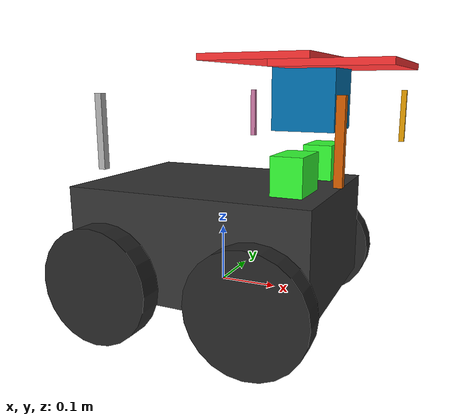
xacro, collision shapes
<?xml version="1.0"?>
<robot name="jackal" xmlns:xacro="http://www.ros.org/wiki/xacro">
  <xacro:property name="PI" value="3.1415926535897931" />

  <xacro:property name="wheelbase" value="0.262" />
  <xacro:property name="track" value="0.37559" />
  <xacro:property name="wheel_vertical_offset" value="0.0345" />
  <xacro:property name="footprint_vertical_offset" value="-0.0655" />

  <xacro:property name="wheel_radius" value="0.098" />
  <xacro:property name="wheel_width" value="0.040" />

  <xacro:property name="chassis_length" value="0.420" />
  <xacro:property name="chassis_width" value="0.310" />
  <xacro:property name="chassis_height" value="0.184" />

  <xacro:property name="dummy_inertia" value="1e-09"/>

  <xacro:property name="mount_spacing" value="0.120" />

  <material name="dark_grey"><color rgba="0.2 0.2 0.2 1.0" /></material>
  <material name="light_grey"><color rgba="0.4 0.4 0.4 1.0" /></material>
  <material name="yellow"><color rgba="0.8 0.8 0.0 1.0" /></material>
  <material name="black"><color rgba="0.15 0.15 0.15 1.0" /></material>

  <xacro:macro name="wheel" params="prefix *joint_pose">

    <link name="${prefix}_wheel_link">
      <visual>
        <origin xyz="0 0 0" rpy="${PI/2} 0 0"/>
        <geometry>
          <mesh filename="package://jackal_description/meshes/jackal-wheel.stl"/>
        </geometry>
        <material name="black" />
      </visual>
      <collision>
        <origin xyz="0 0 0" rpy="${PI/2} 0 0"/>
        <geometry>
          <cylinder radius="${wheel_radius}" length="${wheel_width}"/>
        </geometry>
      </collision>
      <inertial>
        <origin xyz="0 0 0" rpy="0 0 0"/>
        <mass value="0.477"/>
        <inertia
          ixx="0.0013" ixy="0" ixz="0"
          iyy="0.0024" iyz="0"
          izz="0.0013"/>
      </inertial>
    </link>

    <gazebo reference="${prefix}_wheel_link">
      <material>Gazebo/DarkGrey</material>
    </gazebo>

    <joint name="${prefix}_wheel" type="continuous">
      <parent link="chassis_link"/>
      <child link="${prefix}_wheel_link" />
      <xacro:insert_block name="joint_pose" />
      <axis xyz="0 1 0" />
    </joint>

    <!-- In reality, Jackal has only two motors, one per side. However, it's more
         straightforward for Gazebo to simulate as if there's an actuator per wheel. -->
    <transmission name="${prefix}_wheel_trans">
      <type>transmission_interface/SimpleTransmission</type>
      <joint name="${prefix}_wheel">
        <hardwareInterface>VelocityJointInterface</hardwareInterface>
      </joint>
      <actuator name="${prefix}_actuator">
        <mechanicalReduction>1</mechanicalReduction>
      </actuator>
    </transmission>
  </xacro:macro>

  <xacro:wheel prefix="front_left">
    <origin xyz="${wheelbase/2} ${track/2} ${wheel_vertical_offset}" rpy="0 0 0" />
  </xacro:wheel>
  <xacro:wheel prefix="front_right">
    <origin xyz="${wheelbase/2} ${-track/2} ${wheel_vertical_offset}" rpy="0 0 0" />
  </xacro:wheel>
  <xacro:wheel prefix="rear_left">
    <origin xyz="${-wheelbase/2} ${track/2} ${wheel_vertical_offset}" rpy="0 0 0" />
  </xacro:wheel>
  <xacro:wheel prefix="rear_right">
    <origin xyz="${-wheelbase/2} ${-track/2} ${wheel_vertical_offset}" rpy="0 0 0" />
  </xacro:wheel>

  <link name="base_link"></link>

  <joint name="base_link_joint" type="fixed">
    <origin xyz="0 0 0" rpy="0 0 0" />
    <parent link="base_link"/>
    <child link="chassis_link" />
  </joint>

  <link name="chassis_link">
    <visual>
      <origin xyz="0 0 ${footprint_vertical_offset}" rpy="${PI/2} 0 ${PI/2}"/>
      <geometry>
        <mesh filename="package://jackal_description/meshes/jackal-base.stl"/>
      </geometry>
      <material name="dark_grey" />
    </visual>
    <collision>
      <origin xyz="0 0 ${chassis_height/2}"/>
      <geometry>
        <box size="${chassis_length} ${chassis_width} ${chassis_height}"/>
      </geometry>
    </collision>
    <inertial>
      <!-- Center of mass -->
      <origin xyz="0.012  0.002 0.067" rpy="0 0 0"/>
      <mass value="16.523"/>
      <!-- Moments of inertia: ( chassis without wheels ) -->
      <inertia
        ixx="0.3136" ixy="-0.0008" ixz="0.0164"
        iyy="0.3922" iyz="-0.0009"
        izz="0.4485"/>
      </inertial>
  </link>

  <link name="fenders_link">
    <visual>
      <origin xyz="0 0 ${footprint_vertical_offset}" rpy="${PI/2} 0 ${PI/2}"/>
      <geometry>
        <mesh filename="package://jackal_description/meshes/jackal-fenders.stl"/>
      </geometry>
      <material name="yellow" />
    </visual>
  </link>
  <joint name="fenders_joint" type="fixed">
    <parent link="chassis_link" />
    <child link="fenders_link" />
  </joint>

  <link name="imu_link">
    <inertial>
      <mass value="0.001"/>
      <origin xyz="0 0 0" rpy="0 0 0"/>
      <inertia ixx="${dummy_inertia}" ixy="0.0" ixz="0.0" iyy="${dummy_inertia}" iyz="0.0" izz="${dummy_inertia}"/>
    </inertial>
  </link>
  <joint name="imu_joint" type="fixed">
    <parent link="chassis_link" />
    <child link="imu_link" />
  </joint>

  <!-- TODO: Same note as applies to imu_link -->
  <link name="navsat_link">
    <visual>
      <geometry>
        <cylinder radius="0.026" length="0.016" />
      </geometry>
      <origin xyz="0 0 0.008" />
      <material name="black" />
    </visual>
  </link>
  <joint name="navsat_joint" type="fixed">
    <parent link="chassis_link" />
    <child link="navsat_link" />
    <origin xyz="-0.180 0.126 0.1815" />
  </joint>

  <link name="mid_mount"></link>
  <joint name="mid_mount_joint" type="fixed">
    <parent link="chassis_link" />
    <child link="mid_mount" />
    <origin xyz="0 0 ${chassis_height}" />
  </joint>

  <link name="rear_mount"></link>
  <joint name="rear_mount_joint" type="fixed">
    <parent link="mid_mount" />
    <child link="rear_mount" />
    <origin xyz="${-mount_spacing} 0 0" />
  </joint>

  <link name="front_mount"></link>
  <joint name="front_mount_joint" type="fixed">
    <parent link="mid_mount" />
    <child link="front_mount" />
    <origin xyz="${mount_spacing} 0 0" />
  </joint>

  <!-- Bring in simulation data for Gazebo. -->
  <xacro:include filename="jackal.gazebo" />

  <xacro:include filename="sensors.urdf" />

  <!-- Optional standard accessories, including their simulation data. The rendering
       of these into the final description is controlled by optenv variables, which
       default each one to off.-->
  <!--xacro:include filename="accessories.urdf.xacro" /-->

  <!-- Optional custom includes. -->
  <!--xacro:include filename="$(optenv JACKAL_URDF_EXTRAS empty.urdf)" /-->
</robot>

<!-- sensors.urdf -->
<robot>

<!-- ================PS3 BASE PLACEMENT================== -->
  <link name="bottom_plate_link">
    <collision>
      <origin xyz="0.11 0.0 0.19" rpy="0 0 0" />
      <geometry>
        <box size="0.17 0.27 0.01"/>
      </geometry>
    </collision>

    <visual>
      <geometry>
        <box size="0.17 0.27 0.01"/>
      </geometry>
      <material name="pink">
        <color rgba="1 0.2 0.2 1"/>
      </material>
    </visual>

    <inertial>
      <mass value="0.2" />
      <origin xyz="0.11 0.0 0.19" rpy="0 0 0" />
      <box_inertia m="0.1" x="0.1" y="0.1" z="0.1" />
      <inertia ixx="1e-6" ixy="0" ixz="0" iyy="1e-6" iyz="0" izz="1e-6" />
    </inertial>
  </link>

  <joint name="bottom_plate_joint" type="fixed">
    <parent link="fenders_link"/>
    <child link="bottom_plate_link"/>
    <origin xyz="0.11 0.0 0.19" rpy="0 0 0" />
  </joint>
  <link name="rod_1_link">
    <collision>
      <origin xyz="0.08 -0.13 0.05" rpy="0 0 0" />
      <geometry>
        <box size="0.01 0.01 0.1"/>
      </geometry>
    </collision>
    <visual>
      <geometry>
        <box size="0.01 0.01 0.1"/>
      </geometry>
    </visual>
    <inertial>
      <mass value="0.2" />
      <origin xyz="0.08 -0.13 0.05" rpy="0 0 0" />
      <box_inertia m="0.1" x="0.1" y="0.1" z="0.1" />
      <inertia ixx="1e-6" ixy="0" ixz="0" iyy="1e-6" iyz="0" izz="1e-6" />
    </inertial>
  </link>
  <joint name="rod_1_joint" type="fixed">
    <parent link="bottom_plate_link"/>
    <child link="rod_1_link"/>
    <origin xyz="0.08 -0.13 0.05" rpy="0 0 0" />
  </joint>

  <link name="rod_2_link">
    <collision>
      <origin xyz="-0.08 0.13 0.05" rpy="0 0 0" />
      <geometry>
        <box size="0.01 0.01 0.1"/>
      </geometry>
    </collision>
    <visual>
      <geometry>
        <box size="0.01 0.01 0.1"/>
      </geometry>
    </visual>
    <inertial>
      <mass value="0.2" />
      <origin xyz="-0.08 0.13 0.05" rpy="0 0 0" />
      <box_inertia m="0.1" x="0.1" y="0.1" z="0.1" />
      <inertia ixx="1e-6" ixy="0" ixz="0" iyy="1e-6" iyz="0" izz="1e-6" />
    </inertial>
  </link>
  <joint name="rod_2_joint" type="fixed">
    <parent link="bottom_plate_link"/>
    <child link="rod_2_link"/>
    <origin xyz="-0.08 0.13 0.05" rpy="0 0 0" />
  </joint>

  <link name="rod_3_link">
    <collision>
      <origin xyz="-0.08 -0.13 0.05" rpy="0 0 0" />
      <geometry>
        <box size="0.01 0.01 0.1"/>
      </geometry>
    </collision>
    <visual>
      <geometry>
        <box size="0.01 0.01 0.1"/>
      </geometry>
    </visual>
    <inertial>
      <mass value="0.2" />
      <origin xyz="-0.08 -0.13 0.05" rpy="0 0 0" />
      <box_inertia m="0.1" x="0.1" y="0.1" z="0.1" />
      <inertia ixx="1e-6" ixy="0" ixz="0" iyy="1e-6" iyz="0" izz="1e-6" />
    </inertial>
  </link>
  <joint name="rod_3_joint" type="fixed">
    <parent link="bottom_plate_link"/>
    <child link="rod_3_link"/>
    <origin xyz="-0.08 -0.13 0.05" rpy="0 0 0" />
  </joint>

  <link name="rod_4_link">
    <collision>
      <origin xyz="0.08 0.13 0.05" rpy="0 0 0" />
      <geometry>
        <box size="0.01 0.01 0.1"/>
      </geometry>
    </collision>
    <visual>
      <geometry>
        <box size="0.01 0.01 0.1"/>
      </geometry>
    </visual>
    <inertial>
      <mass value="0.2" />
      <origin xyz="0.08 0.13 0.05" rpy="0 0 0" />
      <box_inertia m="0.1" x="0.1" y="0.1" z="0.1" />
      <inertia ixx="1e-6" ixy="0" ixz="0" iyy="1e-6" iyz="0" izz="1e-6" />
    </inertial>
  </link>
  <joint name="rod_4_joint" type="fixed">
    <parent link="bottom_plate_link"/>
    <child link="rod_4_link"/>
    <origin xyz="0.08 0.13 0.05" rpy="0 0 0" />
  </joint>

  <link name="top_plate_link">
    <collision>
      <origin xyz="0.0 0.0 0.1" rpy="0 0 0" />
      <geometry>
        <box size="0.17 0.27 0.01"/>
      </geometry>
    </collision>
    <visual>
      <geometry>
        <box size="0.17 0.27 0.01"/>
      </geometry>
      <material name="pink">
        <color rgba="1 0.2 0.2 1"/>
      </material>
    </visual>
    <inertial>
      <mass value="0.2" />
      <origin xyz="0.0 0.0 0.1" rpy="0 0 0" />
      <box_inertia m="0.1" x="0.1" y="0.1" z="0.1" />
      <inertia ixx="1e-6" ixy="0" ixz="0" iyy="1e-6" iyz="0" izz="1e-6" />
    </inertial>
  </link>
  <joint name="top_plate_joint" type="fixed">
    <parent link="bottom_plate_link"/>
    <child link="top_plate_link"/>
    <origin xyz="0.0 0.0 0.1" rpy="0 0 0" />
  </joint>

<!-- ============== PS3 CAMERAS PLACEMENT =============== -->
  <link name="ps3_camera_r_link">
    <collision>
      <origin xyz="0 0 0" rpy="0 0 0"/>
      <geometry>
        <box size="0.05 0.08 0.06"/>
      </geometry>
    </collision>

    <visual>
      <origin xyz="0 0 0" rpy="0 0 0"/>
      <geometry>
        <box size="0.05 0.08 0.06"/>
      </geometry>
      <material name="green">
        <color rgba="0.2 1 0.2 1"/>
      </material>
    </visual>

    <inertial>
      <mass value="0.1" />
      <origin xyz="0 0 0" rpy="0 0 0"/>
      <box_inertia m="0.1" x="0.1" y="0.1" z="0.1" />
      <inertia ixx="1e-6" ixy="0" ixz="0" iyy="1e-6" iyz="0" izz="1e-6" />
    </inertial>
  </link>

  <joint name="ps3_camera_r_joint" type="fixed">
    <axis xyz="0 1 0" />
    <origin xyz="0.05 -0.08 0.03" rpy="0 0 0"/>
    <parent link="bottom_plate_link"/>
    <child link="ps3_camera_r_link"/>
  </joint>

  <link name="ps3_camera_l_link">
    <collision>
      <origin xyz="0 0 0" rpy="0 0 0"/>
      <geometry>
        <box size="0.05 0.08 0.06"/>
      </geometry>
    </collision>

    <visual>
      <origin xyz="0 0 0" rpy="0 0 0"/>
      <geometry>
        <box size="0.05 0.08 0.06"/>
      </geometry>
      <material name="green">
        <color rgba="0.2 1 0.2 1"/>
      </material>
    </visual>

    <inertial>
      <mass value="0.1" />
      <origin xyz="0 0 0" rpy="0 0 0"/>
      <box_inertia m="0.1" x="0.1" y="0.1" z="0.1" />
      <inertia ixx="1e-6" ixy="0" ixz="0" iyy="1e-6" iyz="0" izz="1e-6" />
    </inertial>
  </link>

  <joint name="ps3_camera_l_joint" type="fixed">
    <axis xyz="0 1 0" />
    <origin xyz="0.05 0.08 0.03" rpy="0 0 0"/>
    <parent link="bottom_plate_link"/>
    <child link="ps3_camera_l_link"/>
  </joint>

  <!-- GAZEBO -->
  <gazebo reference="ps3_camera_l_link">
    <material>Gazebo/Green</material>
    <sensor type="camera" name="camera_l">
      <update_rate>60.0</update_rate>
      <camera name="head">
        <horizontal_fov>1.1</horizontal_fov>
        <image>
          <width>640</width>
          <height>480</height>
          <format>R8G8B8</format>
        </image>
        <clip>
          <near>0.02</near>
          <far>300</far>
        </clip>
      </camera>
      <plugin name="camera_controller" filename="libgazebo_ros_camera.so">
        <alwaysOn>true</alwaysOn>
        <updateRate>0.0</updateRate>
        <cameraName>mybot/camera_l</cameraName>
        <imageTopicName>image_raw</imageTopicName>
        <cameraInfoTopicName>camera_info</cameraInfoTopicName>
        <frameName>camera</frameName>
        <hackBaseline>0.07</hackBaseline>
        <distortionK1>0.0</distortionK1>
        <distortionK2>0.0</distortionK2>
        <distortionK3>0.0</distortionK3>
        <distortionT1>0.0</distortionT1>
        <distortionT2>0.0</distortionT2>
      </plugin>
    </sensor>
  </gazebo>

  <gazebo reference="ps3_camera_r_link">
    <material>Gazebo/Green</material>
    <sensor type="camera" name="camera_r">
      <update_rate>60.0</update_rate>
      <camera name="head">
        <horizontal_fov>1.1</horizontal_fov>
        <image>
          <width>640</width>
          <height>480</height>
          <format>R8G8B8</format>
        </image>
        <clip>
          <near>0.02</near>
          <far>300</far>
        </clip>
      </camera>
      <plugin name="camera_controller" filename="libgazebo_ros_camera.so">
        <alwaysOn>true</alwaysOn>
        <updateRate>0.0</updateRate>
        <cameraName>mybot/camera_r</cameraName>
        <imageTopicName>image_raw</imageTopicName>
        <cameraInfoTopicName>camera_info</cameraInfoTopicName>
        <frameName>camera</frameName>
        <hackBaseline>0.07</hackBaseline>
        <distortionK1>0.0</distortionK1>
        <distortionK2>0.0</distortionK2>
        <distortionK3>0.0</distortionK3>
        <distortionT1>0.0</distortionT1>
        <distortionT2>0.0</distortionT2>
      </plugin>
    </sensor>
  </gazebo>

<!-- ============= HOKUYO LASER PLACEMENT =============== -->

  <link name="hokuyo_link">
    <collision>
      <origin xyz="0 0 0" rpy="0 0 0"/>
      <geometry>
    <box size="0.1 0.1 0.1"/>
      </geometry>
    </collision>

    <visual>
      <origin xyz="0 0 0" rpy="0 0 0"/>
      <geometry>
        <mesh filename="package://quad_pkg/src/meshes/my_hokuyo.dae"/>
      </geometry>
    </visual>

    <inertial>
      <mass value="1e-5" />
      <origin xyz="0 0 0" rpy="0 0 0"/>
      <inertia ixx="1e-6" ixy="0" ixz="0" iyy="1e-6" iyz="0" izz="1e-6" />
    </inertial>
  </link>

  <joint name="hokuyo_joint" type="fixed">
    <axis xyz="0 1 0" />
    <origin xyz="0.05 0 .14" rpy="0 0 0"/>
    <parent link="bottom_plate_link"/>
    <child link="hokuyo_link"/>
  </joint>

  <!-- GAZEBO -->
  <gazebo reference="hokuyo_link">
    <sensor type="ray" name="head_hokuyo_sensor">
      <pose>0 0 0 0 0 0</pose>
      <visualize>true</visualize>
      <update_rate>40</update_rate>
      <ray>
        <scan>
          <horizontal>
            <samples>720</samples>
            <resolution>1</resolution>
            <min_angle>-1.570796</min_angle>
            <max_angle>1.570796</max_angle>
          </horizontal>
        </scan>
        <range>
          <min>0.10</min>
          <max>30.0</max>
          <resolution>0.01</resolution>
        </range>
        <noise>
          <type>gaussian</type>
          <mean>0.0</mean>
          <stddev>0.01</stddev>
        </noise>
      </ray>
      <plugin name="gazebo_ros_head_hokuyo_controller" filename="libgazebo_ros_laser.so">
        <topicName>/scan</topicName>
        <frameName>hokuyo_link</frameName>
      </plugin>
    </sensor>
  </gazebo>

</robot>
